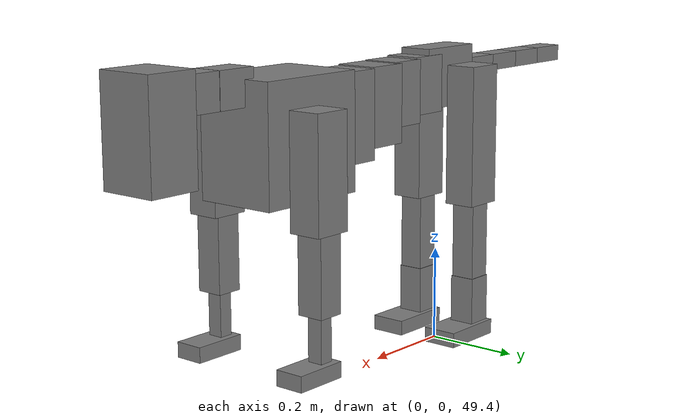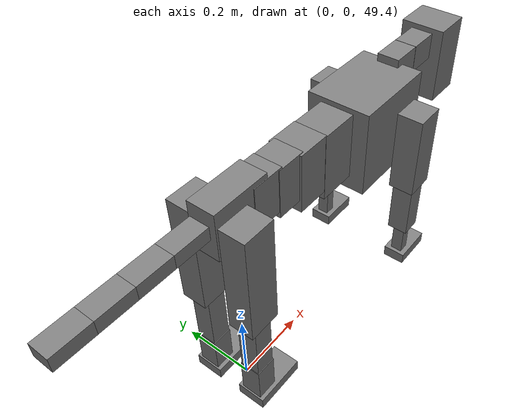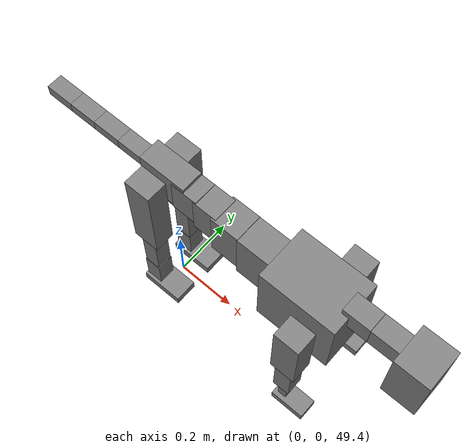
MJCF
<mujoco model="dog">

    <default>
        <joint armature="0.02" stiffness="1" damping="0.2" limited="true"/>
        <geom condim="3" friction="1 0.05 0.05" margin="0.01"/>
        <motor ctrllimited="true" ctrlrange="-1.0 1.0" forcelimited="true" gear="50"/>
    </default>

    <compiler inertiafromgeom="true" angle="radian"/>

    <option timestep="0.016" iterations="50" tolerance="1e-10" solver="Newton" jacobian="dense" cone="pyramidal"/>

    <size nconmax="20000" njmax="60000" nstack="5000000"/>
    <visual>
        <map force="0.1" zfar="30"/>
        <rgba haze="0.15 0.25 0.35 1"/>
        <quality shadowsize="2048"/>
        <global offwidth="800" offheight="800"/>
    </visual>

    <asset>
        <texture type="skybox" builtin="gradient" rgb1="0.3 0.5 0.7" rgb2="0 0 0" width="512" height="512"/>
        <texture name="texplane" type="2d" builtin="checker" rgb1=".2 .3 .4" rgb2=".1 0.15 0.2" width="512" height="512"
                 mark="cross" markrgb=".8 .8 .8"/>
        <texture name="texgeom" type="cube" builtin="flat" mark="cross" width="127" height="1278" rgb1="0.8 0.6 0.4"
                 rgb2="0.8 0.6 0.4" markrgb="1 1 1" random="0.01"/>

        <material name="matplane" reflectance="0.3" texture="texplane" texrepeat="1 1" texuniform="true"/>
        <material name="matgeom" texture="texgeom" texuniform="true" rgba="0.8 0.6 .4 1"/>
    </asset>

    <worldbody>
        <geom name="floor" pos="0 0 0" size="0 0 .25" type="plane" material="matplane" condim="3"/>

        <light directional="false" diffuse=".2 .2 .2" specular="0 0 0" pos="0 0 5" dir="0 0 -1" castshadow="false"/>
        <light mode="targetbodycom" target="torso" directional="false" diffuse=".8 .8 .8" specular="0.3 0.3 0.3"
               pos="0 0 4.0" dir="0 0 -1"/>

        <body name="root" pos="0 0 50">
            <freejoint name="root_1"/>
            <geom type="box" pos="0 0 -0.02" size="0.0774  0.0358  0.063" density="2030"/>

            <body name="spine1" pos="0.054 0 0">
                <joint name="spine1_y" axis="0 1 0" range="0 0.7" limited="true"/>
                <geom type="box" pos="0.02375 0 -0.03" size="0.04375  0.0375  0.05985" density="2030"/>

                <body name="spine2" pos="0.0612 0 0">
                    <joint name="spine2_y" axis="0 1 0" range="-0.15 0.15" limited="true"/>
                    <geom type="box" pos="0.03555  0  -0.04" size="0.04055  0.039  0.06615" density="2030"/>

                    <body name="spine3" pos="0.0730 0 0">
                        <joint name="spine3_y" axis="0 1 0" range="-0.15 0.15" limited="true"/>
                        <geom type="box" pos="0.03555  0  -0.057" size="0.04555  0.0445  0.081" density="2030"/>

                        <body name="spine4" pos="0.0780 0 0">
                            <joint name="spine4_y" axis="0 1 0" range="-0.15 0.15" limited="true"/>
                            <geom type="box" pos="0.05265  0  -0.07" size="0.05265  0.045  0.09135" density="2030"/>

                            <body name="torso" pos="0.1082 0 0">
                                <joint name="torso_y" axis="0 1 0" range="-0.15 0.15" limited="true"/>
                                <geom type="box" pos="0.11925  0  -0.085" size="0.11925  0.085  0.11745"
                                      density="2030"/>

                                <body name="neck1" pos="0.2160  0   0.0180">
                                    <joint name="neck1_y" axis="0 1 0" range="-1.2  -1" limited="true"/>
                                    <geom type="box" pos="0.0423  0  0" size="0.0423  0.03  0.036" density="2325"/>

                                    <body name="neck2" pos="0.0853  0  0">
                                        <joint name="neck2_y" axis="0 1 0" range="0.1  0" limited="true"/>
                                        <geom type="box" pos="0.0423  0  0" size="0.0423  0.03  0.036" density="2325"/>

                                        <body name="head" pos="0.0853  0  0">
                                            <joint name="head_y" axis="0 1 0" range="-0.3  -0.2" limited="true"/>
                                            <geom type="box" pos="0.0531  0  -0.055" size="0.0531  0.06  0.1044"
                                                  density="4030"/>

                                        </body>
                                    </body>
                                </body>

                                <body name="front_shoulder" pos="0.156  0   -0.0480">
                                    <joint name="front_shoulder_y" axis="0 1 0" range="-1 1.5" limited="true"/>
                                    <geom type="box" pos="0 0.13 -0.0860" size="0.0398  0.0340  0.1126" density="1158"/>
                                    <geom type="box" pos="0 -0.13 -0.0860" size="0.0398  0.0340  0.1126"
                                          density="1158"/>

                                    <body name="front_elbow" pos="0  0  -0.1720">
                                        <joint name="front_elbow_y" axis="0 1 0" range="-2 0" limited="true"/>
                                        <geom type="box" pos="0 0.13 -0.0907" size="0.0272  0.0278  0.0907"
                                              density="1081"/>
                                        <geom type="box" pos="0 -0.13 -0.0907" size="0.0272  0.0278  0.0907"
                                              density="1081"/>

                                        <body name="front_wrist" pos="0  0  -0.1814">
                                            <joint name="front_wrist_y" axis="0 1 0" range="-0.2 0" limited="true"/>
                                            <geom type="box" pos="0 0.13 -0.0526" size="0.0143  0.0159  0.0657"
                                                  density="1664"/>
                                            <geom type="box" pos="0 -0.13 -0.0526" size="0.0143  0.0159  0.0657"
                                                  density="1664"/>

                                            <body name="front_finger_end" pos="0  0  -0.1051">
                                                <joint name="front_finger_y" axis="0 1 0" range="-0.4 1"
                                                       limited="true"/>
                                                <geom type="box" pos="0.0302  0.13  -0.0007"
                                                      size="0.0554  0.0302  0.0157" density="1515"/>
                                                <geom type="box" pos="0.0302  -0.13  -0.0007"
                                                      size="0.0554  0.0302  0.0157" density="1515"/>

                                            </body>

                                        </body>
                                    </body>
                                </body>

                            </body>
                        </body>
                    </body>
                </body>
            </body>

            <body name="back_hip" pos="-0.03 0 -0.018">
                <joint name="back_hip_y" axis="0 1 0" range="-1.5 0.3" limited="true"/>
                <geom type="box" pos="0 0.07 -0.1256" size="0.0428  0.0336  0.1484" density="1154"/>
                <geom type="box" pos="0 -0.07 -0.1256" size="0.0428  0.0336  0.1484" density="1154"/>

                <body name="back_knee" pos="0  0  -0.2512">
                    <joint name="back_knee_y" axis="0 1 0" range="0 2.8" limited="true"/>
                    <geom type="box" pos="0 0.07 -0.0979" size="0.0261  0.0257  0.1134" density="1227"/>
                    <geom type="box" pos="0 -0.07 -0.0979" size="0.0261  0.0257  0.1134" density="1227"/>

                    <body name="back_ankle" pos="0  0  -0.1957">
                        <joint name="back_ankle_y" axis="0 1 0" range="-2.2 0" limited="true"/>
                        <geom type="box" pos="0 0.07 -0.0519" size="0.0275  0.0275  0.0631" density="1284"/>
                        <geom type="box" pos="0 -0.07 -0.0519" size="0.0275  0.0275  0.0631" density="1284"/>

                        <body name="back_toe_end" pos="0  0  -0.1037">
                            <joint name="back_toe_y" axis="0 1 0" range="-0.4 1" limited="true"/>
                            <geom type="box" pos="0.0379  0.07  -0.0008" size="0.0695  0.0379  0.0158" density="1515"/>
                            <geom type="box" pos="0.0379  -0.07  -0.0008" size="0.0695  0.0379  0.0158" density="1515"/>

                        </body>
                    </body>
                </body>
            </body>

            <body name="tail1" pos="-0.074 0 -0.006">
                <joint name="tail1_y" axis="0 1 0" range="-0.2 0.2" limited="true"/>
                <geom type="box" pos="-0.0536  0  0" size="0.045  0.025  0.0175" density="1587"/>

                <body name="tail2" pos="-0.09 0 0">
                    <joint name="tail2_y" axis="0 1 0" range="-0.2 0.2" limited="true"/>
                    <geom type="box" pos="-0.0536  0  0" size="0.045  0.025  0.0175" density="1587"/>

                    <body name="tail3" pos="-0.09 0 0">
                        <joint name="tail3_y" axis="0 1 0" range="-0.2 0.2" limited="true"/>
                        <geom type="box" pos="-0.0536  0  0" size="0.045  0.025  0.0175" density="1587"/>

                        <body name="tail4" pos="-0.09 0 0">
                            <joint name="tail4_y" axis="0 1 0" range="-0.2 0.2" limited="true"/>
                            <geom type="box" pos="-0.0536  0  0" size="0.045  0.025  0.0175" density="1587"/>

                        </body>
                    </body>
                </body>
            </body>
        </body>
    </worldbody>

    <actuator>
        <motor joint="spine1_y" forcerange="-150 150     "/>
        <motor joint="spine2_y" forcerange="-150 150     "/>
        <motor joint="spine3_y" forcerange="-150 150     "/>
        <motor joint="spine4_y" forcerange="-150 150     "/>
        <motor joint="torso_y" forcerange="-150 150     "/>
        <motor joint="neck1_y" forcerange="-100 100       "/>
        <motor joint="neck2_y" forcerange="-100 100       "/>
        <motor joint="head_y" forcerange="-150 150       "/>
        <motor joint="front_shoulder_y" forcerange="-165.05 161.93"/>
        <motor joint="front_elbow_y" forcerange="-156.24 146.22"/>
        <motor joint="front_wrist_y" forcerange="-60.32 67.17"/>
        <motor joint="front_finger_y" forcerange="-49.89 71.28"/>
        <motor joint="back_hip_y" forcerange="-367.52 280.13"/>
        <motor joint="back_knee_y" forcerange="-330.09 244.25"/>
        <motor joint="back_angle_y" forcerange="-227.39 113.17"/>
        <motor joint="back_toe_y" forcerange="-98.84 124.50"/>
        <motor joint="tail1_y" forcerange="-50 50     "/>
        <motor joint="tail2_y" forcerange="-50 50     "/>
        <motor joint="tail3_y" forcerange="-50 50     "/>
        <motor joint="tail4_y" forcerange="-50 50     "/>
    </actuator>
</mujoco>
